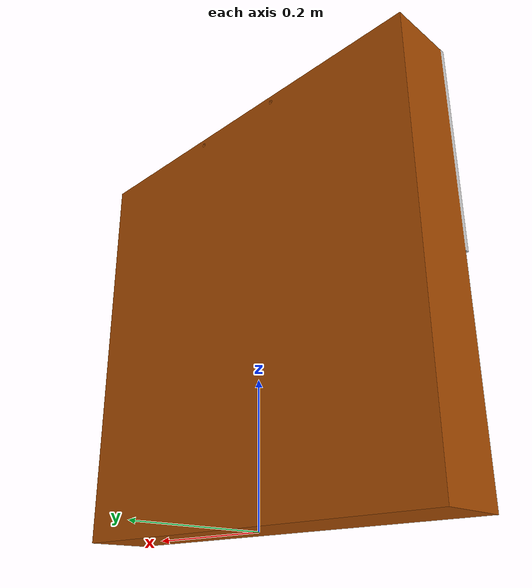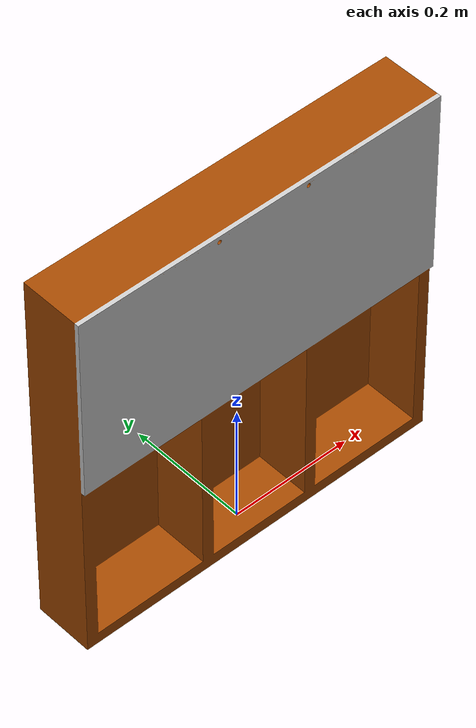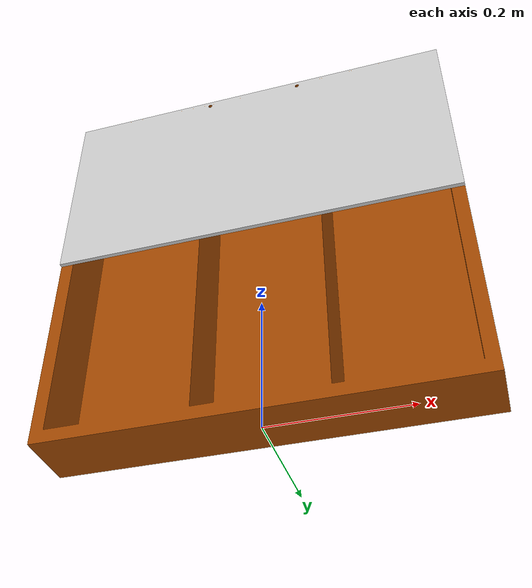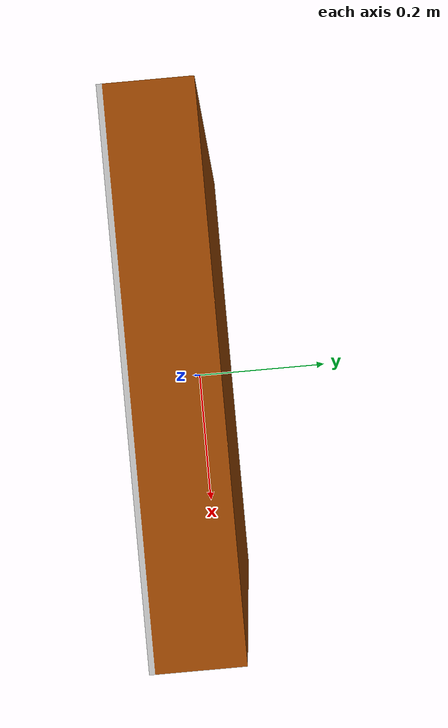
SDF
<sdf version='1.6'>
  <model name='wall_plain'>
    <link name='wall_plain'>
      <pose frame=''>0 0 0 0 0 0</pose>

      <inertial>
        <pose frame=''>0 0.00594 0.31407 0 0 0</pose>
        <mass>0.1</mass>
        <inertia>
          <ixx>0.225152</ixx>
          <ixy>0</ixy>
          <ixz>0</ixz>
          <iyy>0.41938</iyy>
          <iyz>0</iyz>
          <izz>0.206933</izz>
        </inertia>
      </inertial>

      <collision name='wall_plain_collision'>
	<!-- Change max_vel and/or min_depth to keep cones from "bouncing" -->
        <pose frame=''>0 0 0.01 0 0 0</pose>
        <geometry>
          <mesh>
            <scale>0.001 0.001 0.001</scale>
            <uri>model://wall_plain/meshes/wall_plain.dae</uri>
          </mesh>
        </geometry>
      </collision>

      <visual name='wall_plain_visual'>
        <pose frame=''>0 0 0.01 0 0 0</pose>
        <geometry>
          <mesh>
            <scale>0.001 0.001 0.001</scale>
            <uri>model://wall_plain/meshes/wall_plain.dae</uri>
          </mesh>
        </geometry>
      </visual>

    </link>
  </model>
</sdf>
